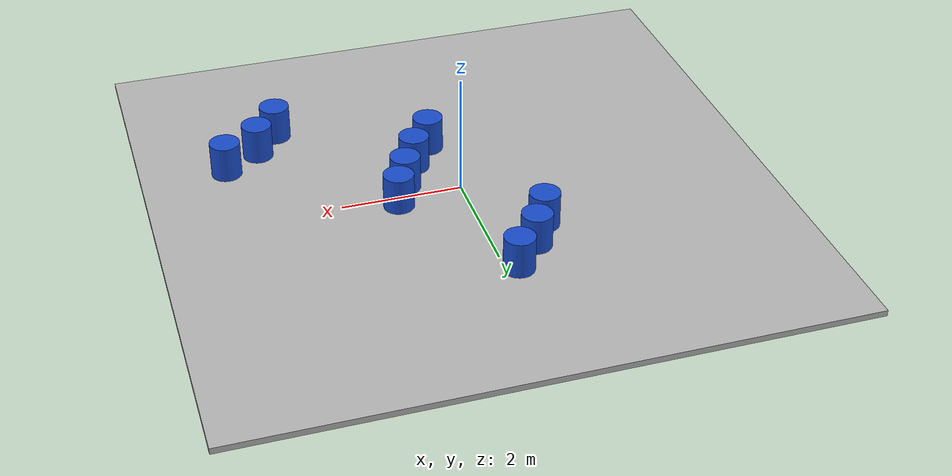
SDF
<?xml version="1.0" ?>
<sdf version="1.9">
  <world name="chicane1">

    <plugin name='ignition::gazebo::systems::Physics' filename='ignition-gazebo-physics-system'/>
    <plugin name='ignition::gazebo::systems::UserCommands' filename='ignition-gazebo-user-commands-system'/>
    <plugin name='ignition::gazebo::systems::SceneBroadcaster' filename='ignition-gazebo-scene-broadcaster-system'/>

    <physics type="ode">
      <max_step_size>0.001</max_step_size>
      <real_time_update_rate>1000</real_time_update_rate>
    </physics>

    <scene>
      <ambient>0.1 0.1 0.1 0.1</ambient>
      <background>0.8 0.8 0.8 1.0</background>
      <grid>true</grid>
    </scene>

    <light type="directional" name="sun">
      <cast_shadows>true</cast_shadows>
      <pose>0 0 10 0 0 0</pose>
      <diffuse>1 1 1 1</diffuse>
      <specular>0.2 0.2 0.2 1</specular>
      <direction>-0.5 0.1 -0.9</direction>
    </light>

    <include>
      <uri>model://floor</uri>
      <pose>0 0 0 0 0 0</pose>
    </include>

    <gui fullscreen='0'>
      <camera name='user_camera'>
        <pose>-4 -16 4 0 0.3 1.2</pose>
        <view_controller>orbit</view_controller>
      </camera>
    </gui>

    <include>
      <uri>model://barrel</uri>
      <name>barrel_1</name>
      <pose>-0.9 1.5 0.1 0 0 0</pose>
    </include>
    <include>
      <uri>model://barrel</uri>
      <name>barrel_2</name>
      <pose>-0.6 2.0 0.1 0 0 0</pose>
    </include>
    <include>
      <uri>model://barrel</uri>
      <name>barrel_3</name>
      <pose>-0.15 2.5 0.1 0 0 0</pose>
    </include>

    <include>
      <uri>model://barrel</uri>
      <name>barrel_4</name>
      <pose>0.22 -1.2 0.1 0 0 0</pose>
    </include>
    <include>
      <uri>model://barrel</uri>
      <name>barrel_5</name>
      <pose>0.6 -0.7 0.1 0 0 0</pose>
    </include>
    <include>
      <uri>model://barrel</uri>
      <name>barrel_6</name>
      <pose>0.9 -0.15 0.1 0 0 0</pose>
    </include>
    <include>
      <uri>model://barrel</uri>
      <name>barrel_7</name>
      <pose>1.14 0.34 0.1 0 0 0</pose>
    </include>

    <include>
      <uri>model://barrel</uri>
      <name>barrel_8</name>
      <pose>3.6 -1.4 0.1 0 0 0</pose>
    </include>
    <include>
      <uri>model://barrel</uri>
      <name>barrel_9</name>
      <pose>3.0 -1.8 0.1 0 0 0</pose>
    </include>
    <include>
      <uri>model://barrel</uri>
      <name>barrel_10</name>
      <pose>2.6 -2.3 0.1 0 0 0</pose>
    </include>

  </world>
</sdf>

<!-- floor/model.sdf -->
<sdf version="1.6">
  <model name="custom_course">
    <static>true</static>
    <link name="link">
      <collision name="collision">
        <geometry>
          <box>
            <size>10 10 0.1</size> <!-- PUT YOUR COURSE SIZE HERE IN METERS -->
          </box>
        </geometry>
      </collision>
      <visual name="visual">
        <geometry>
          <box>
            <size>10 10 0.1</size> <!-- PUT YOUR COURSE SIZE HERE IN METERS -->
          </box>
        </geometry>
        <material>
          <script>
            <uri>model://floor/materials/scripts</uri>
            <uri>model://floor/materials/textures</uri>
            <name>CustomCourse/Diffuse</name>
          </script>
        </material>
      </visual>
    </link>
  </model>
</sdf>

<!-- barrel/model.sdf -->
<sdf version="1.8">
  <model name="barrel">
    <static>true</static>
    <link name="link">
      <collision name="collision">
        <geometry>
          <cylinder>
            <radius>0.25</radius>
            <length>0.6</length>
          </cylinder>
        </geometry>
        <pose>0 0 0.3 0 0 0</pose>
      </collision>
      <visual name="visual">
        <geometry>
          <cylinder>
            <radius>0.25</radius>
            <length>0.6</length>
          </cylinder>
        </geometry>
        <pose>0 0 0.3 0 0 0</pose>
        <material>
          <ambient>0.1 0.3 0.8 1</ambient>
          <diffuse>0.1 0.3 0.8 1</diffuse>
          <specular>0.3 0.3 0.3 1</specular>
        </material>
      </visual>
    </link>
  </model>
</sdf>
